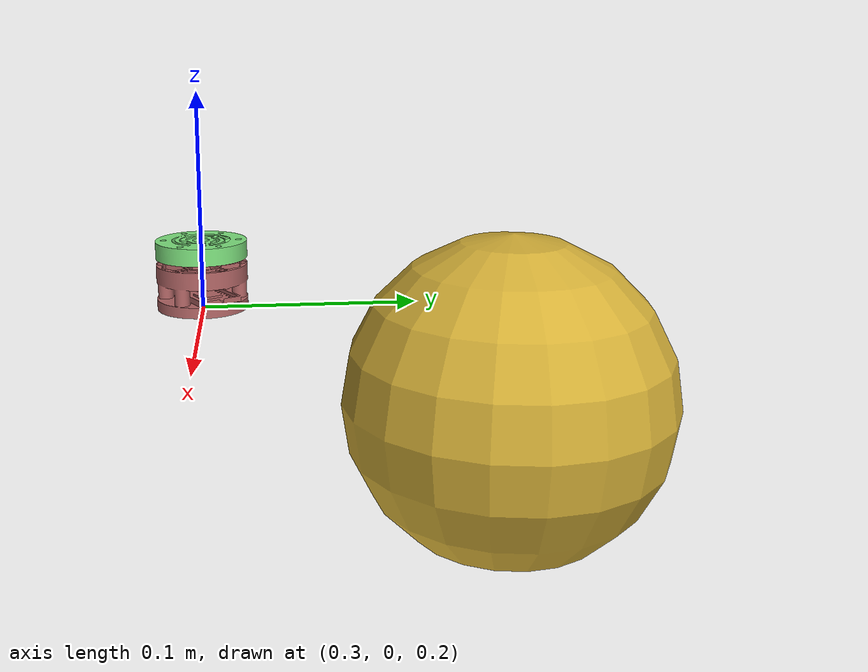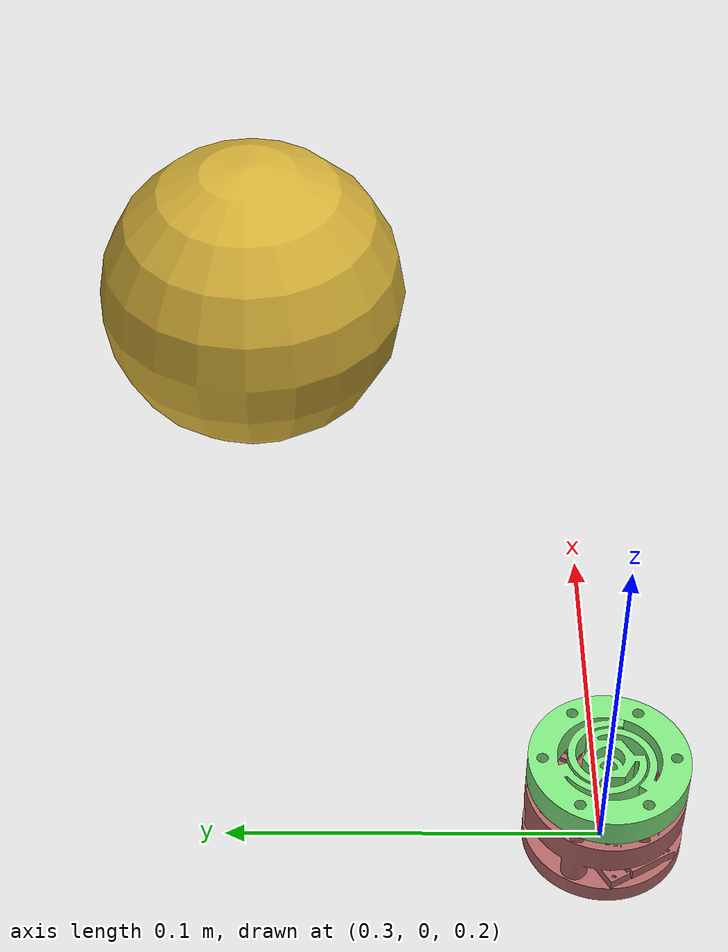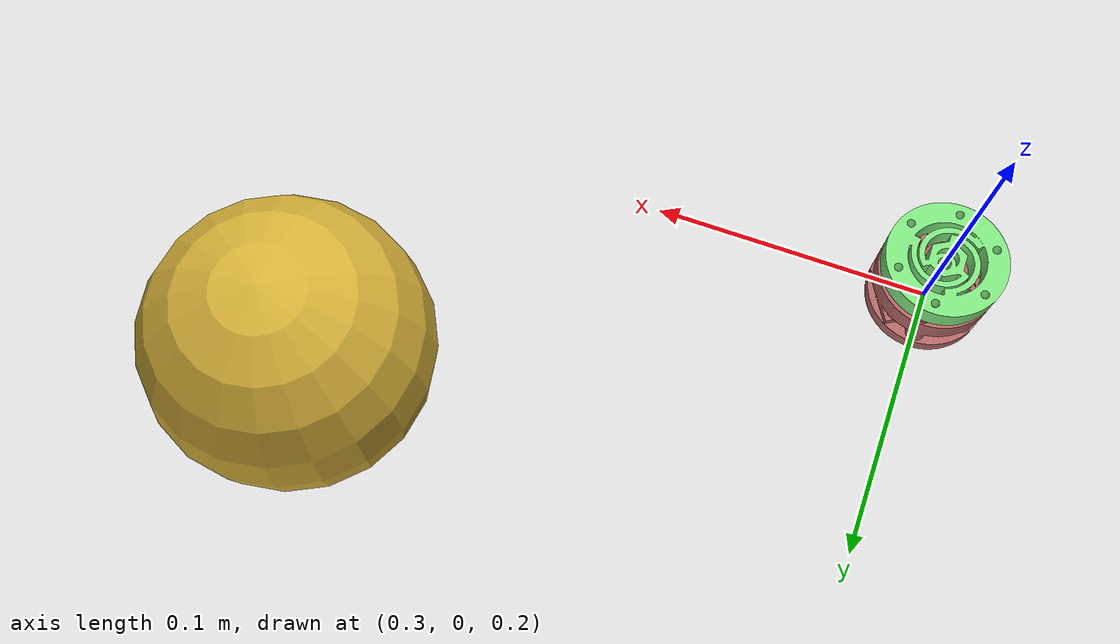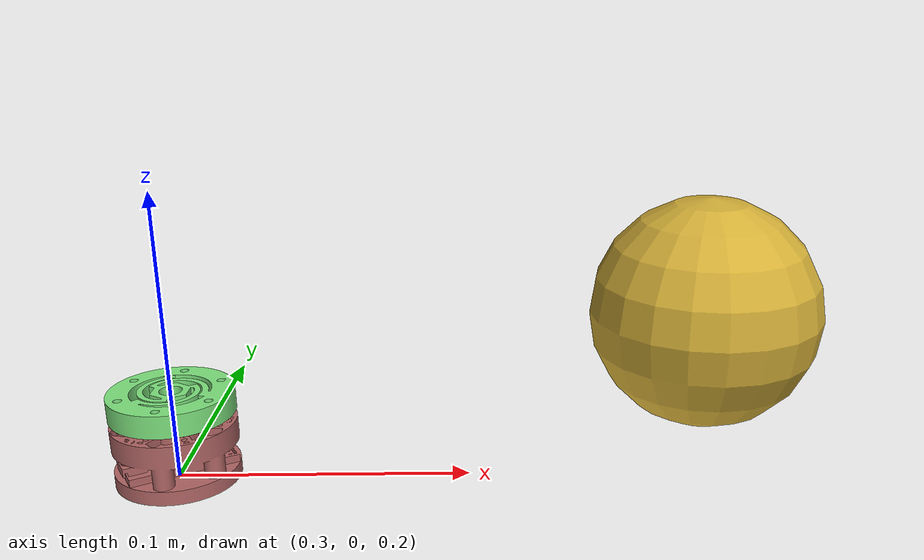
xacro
<?xml version="1.0" ?>
<robot
       xmlns:xacro="http://www.ros.org/wiki/xacro"
       name="hex9904_10mm_ft_demo">

  <!-- Gazebo demo of the hex9904 sensor with 10mm hat. -->

  <xacro:include filename="$(find tams_printed_ft)/urdf/ft_payload.xacro" />
  <xacro:include filename="$(find tams_printed_ft)/urdf/hex9904_ft.xacro" />
  <xacro:include filename="$(find tams_printed_ft)/urdf/ft_sensor.xacro" />

  <link name="world" />

  <xacro:ft_control_plugin name="hex9904_10mm_ft" />

  <xacro:ft_sensor_plugin
     name="hex9904_10mm_ft"
     joint="sensor_joint"
     rate="200"
     topic="wrench" >
  </xacro:ft_sensor_plugin>

  <xacro:hex9904_ft name="hex9904" hat="10mm"  hat_mass = "0.110" hat_height="0.01" />

  <xacro:ft_payload_sphere  name="m400g" mass="0.4" diameter="0.1">
    <cog_origin xyz="0 0 0" rpy="0 0 0"/>
  </xacro:ft_payload_sphere>

  <!-- mount sensor in world, and payload on sensor -->

  <joint name="world_hex9904_10mm_ft_joint" type="fixed">
    <parent link="world" />
    <child link="hex9904_10mm_ft" />
    <origin xyz="0.3 0 0.2" rpy="0 0 0" />
  </joint>

  <joint name="hex9904_10mm_ft_payload_joint" type="fixed">
    <parent link="hex9904_10mm_ft_tool_mount" />
    <child link="m400g" />
    <origin xyz="0.2 0.1 0" rpy="0 0 0" />
  </joint>

</robot>

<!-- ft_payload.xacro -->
<robot
       xmlns:xacro="http://www.ros.org/wiki/xacro"
       name="ft_paylaod">

<!-- configurable payload for static force/torque tests -->

<xacro:macro name="ft_payload_sphere" params="name mass *cog_origin diameter">
  <link name="${name}">
    <inertial>
      <xacro:insert_block name="cog_origin" />
      <mass value="${mass}" />
      <inertia  ixx="0.001" ixy="0" ixz="0" iyy="0.001" iyz="0" izz="0.001" />
    </inertial>
    <visual>
      <xacro:insert_block name="cog_origin" />
      <material name="ft_payload_gold" > 212,175,55
        <color rgba="${212/255} ${175/255} ${55/255} 1.0" />
      </material>
      <geometry>
         <sphere radius="${diameter/2}" />
      </geometry>
    </visual>
    <collision>
      <xacro:insert_block name="cog_origin" />
      <geometry>
         <sphere radius="${diameter/2}" />
      </geometry>
    </collision>
  </link>

  <gazebo reference="${name}">
      <material>Gazebo/Gold</material>
      <turnGravityOff>false</turnGravityOff>
      <selfCollide>false</selfCollide>
      <!-- kp: stiffness kd: damping mu1, mu2: friction -->
      <mu1>100.0</mu1>
      <mu2>100.0</mu2>
      <kp>1000000.0</kp>
      <kd>1.0</kd>
  </gazebo>
</xacro:macro>

</robot>

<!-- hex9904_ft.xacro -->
<robot
       xmlns:xacro="http://www.ros.org/wiki/xacro"
       name="hex9904_ft">

<xacro:macro name="hex9904_ft" params="name hat hat_height hat_mass" >

  <link name="${name}_${hat}_ft_hat">
    <inertial>
      <origin xyz="0 0 ${hat_height/2}" />
      <mass value="${hat_mass}" />
      <inertia  ixx="0.0001" ixy="0" ixz="0" iyy="0.0001" iyz="0" izz="0.00005" />
      </inertial>
      <visual>
        <origin xyz="0 0 0" />
        <material name="dummy" >
          <color rgba="0.5 0.9 0.5 1.0" />
        </material>
        <geometry>
          <mesh filename="package://tams_printed_ft/meshes/hex9904_hat_${hat}.dae" scale="0.001 0.001 0.001" />
        </geometry>
      </visual>
      <collision>
        <origin xyz="0 0 ${hat_height}" />
        <geometry>
          <cylinder radius="${0.045/2}" length="${hat_height}" />
        </geometry>
    </collision>
  </link>

  <gazebo reference="${name}_${hat}_ft_hat">
      <material>Gazebo/White</material>
      <turnGravityOff>false</turnGravityOff>
      <selfCollide>false</selfCollide>
      <!-- kp: stiffness kd: damping mu1, mu2: friction -->
      <mu1>100.0</mu1>
      <mu2>100.0</mu2>
      <kp>1000000.0</kp>
      <kd>1.0</kd>
  </gazebo>

  <link name="${name}_${hat}_ft">
    <!-- base ring size: diameter 43mm, height 22+23mm. -->
    <inertial>
      <origin xyz="0 0 ${(0.013+0.008)/2}" />
      <mass value="0.2" />
      <inertia  ixx="0.0001" ixy="0" ixz="0" iyy="0.0001" iyz="0" izz="0.00005" />
      </inertial>
      <visual>
        <origin xyz="0 0 0.013" /> <!-- mesh centered at bottom of base plate -->
        <material name="dummy" >
          <color rgba="0.7 0.4 0.4 1.0" />
        </material>
        <geometry>
          <mesh filename="package://tams_printed_ft/meshes/hex9904_baseplate_groundplate.dae" scale="0.001 0.001 0.001" />
        </geometry>
      </visual>
      <collision>
        <origin xyz="0 0 ${(0.013+0.008)/2}" />
        <geometry>
          <cylinder radius="${0.042/2+0.002}" length="0.021" />
        </geometry>
    </collision>
  </link>

  <gazebo reference="${name}_${hat}_ft">
      <material>Gazebo/Black</material>
      <turnGravityOff>false</turnGravityOff>
      <selfCollide>false</selfCollide>
      <!-- kp: stiffness kd: damping mu1, mu2: friction -->
      <mu1>100.0</mu1>
      <mu2>100.0</mu2>
      <kp>1000000.0</kp>
      <kd>1.0</kd>
  </gazebo>

  <!-- maybe try: type=floating, no axis required -->
  <joint name="${name}_${hat}_ft_sensor_joint" type="revolute">
    <parent link="${name}_${hat}_ft" />
    <child link="${name}_${hat}_ft_hat" />
    <origin xyz="0 0 ${0.013+0.001}" rpy="0 0 0" />

    <axis xyz="1 0 0" rpy="0 0 0" />
    <dynamics damping="1.01" friction="0.05" />
    <limit lower="-0.02" upper="0.02" effort="100" velocity="1" />
    <safety_controller soft_lower_limit="-0.001" soft_upper_limit="0.001" k_position="1" k_velocity="1" />
  </joint>

  <transmission name="${name}_${hat}_ft_sensor_joint_transmission">
    <type>transmission_interface/SimpleTransmission</type>
    <joint name="${name}_${hat}_ft_sensor_joint">
      <hardwareInterface>hardware_interface/EffortJointInterface</hardwareInterface>
    </joint>
    <actuator name="${name}_${hat}_ft_sensor_joint_motor">
      <hardwareInterface>hardware_interface/EffortJointInterface</hardwareInterface>
      <mechanicalReduction>1</mechanicalReduction>
    </actuator>
  </transmission>

  <link name="${name}_${hat}_ft_tool_mount" />

  <joint name="${name}_${hat}_ft_tool_mount_joint" type="fixed">
    <parent link="${name}_${hat}_ft_hat" />
    <child link="${name}_${hat}_ft_tool_mount" />
    <origin xyz="0 0 ${hat_height}" rpy="0 0 0" />
  </joint>

</xacro:macro>

</robot>
